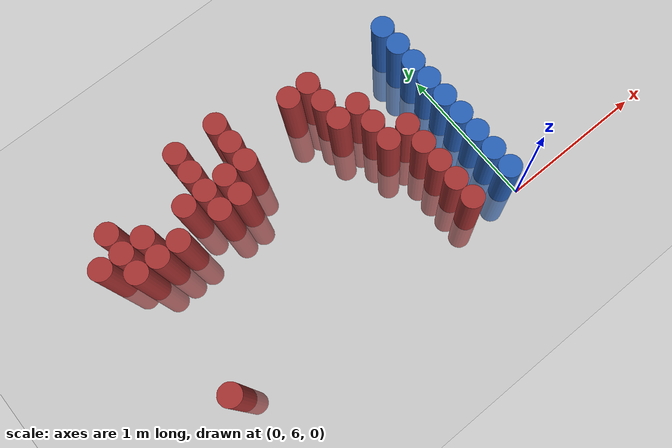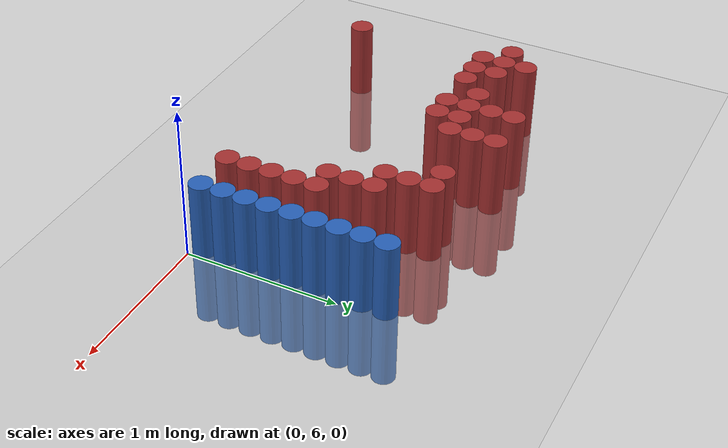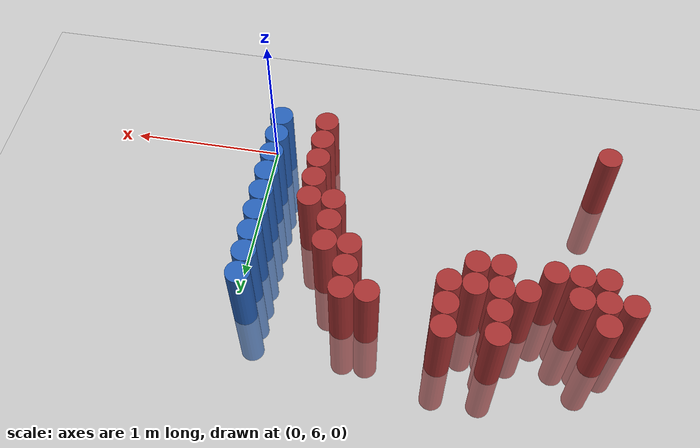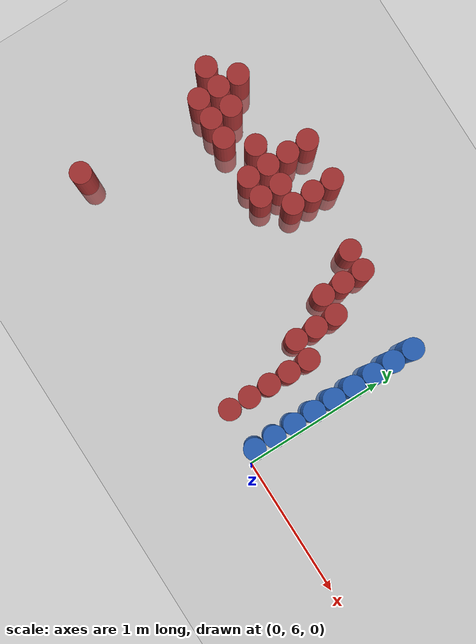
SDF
<sdf version="1.6">
 <world name="default">
  <model name="ground_plane">
   <static>1</static>
   <link name="link">
    <collision name="collision">
     <geometry><plane><normal>0 0 1</normal><size>100 100</size></plane></geometry>
     <surface><friction><ode><mu>100</mu><mu2>50</mu2></ode></friction></surface>
    </collision>
    <visual name="visual">
     <cast_shadows>0</cast_shadows>
     <geometry><plane><normal>0 0 1</normal><size>100 100</size></plane></geometry>
     <material>
      <script><uri>file://media/materials/scripts/gazebo.material</uri><name>Gazebo/Grey</name></script>
     </material>
    </visual>
   </link>
  </model>
  <model name="unit_cylinder_200">
   <static>1</static>
   <pose>-2.325000 7.125000 0.000000 0.000000 0.000000 0.000000</pose>
   <link name="link">
    <inertial>
     <mass>1</mass>
     <inertia><ixx>0.145833</ixx><ixy>0</ixy><ixz>0</ixz><iyy>0.145833</iyy><iyz>0</iyz><izz>0.125</izz></inertia>
    </inertial>
    <collision name="collision">
     <geometry><cylinder><radius>0.075000</radius><length>1</length></cylinder></geometry>
    </collision>
    <visual name="visual">
     <geometry><cylinder><radius>0.075000</radius><length>1</length></cylinder></geometry>
     <material>
      <ambient>0.648000 0.192000 0.192000 1</ambient>
      <diffuse>0.648000 0.192000 0.192000 1</diffuse>
     </material>
     <material>
      <script><name>Gazebo/Grey</name><uri>file://media/materials/scripts/gazebo.material</uri></script>
     </material>
    </visual>
    <sensor name="sensor_contact" type="contact"><contact><collision>collision</collision></contact></sensor>
   </link>
   <plugin filename="gz-sim-touchplugin-system" name="gz::sim::systems::TouchPlugin">
    <target>robot</target>
    <namespace>robot</namespace>
    <time>0.001</time>
    <enabled>true</enabled>
   </plugin>
  </model>
  <model name="unit_cylinder_204">
   <static>1</static>
   <pose>-2.175000 6.075000 0.000000 0.000000 0.000000 0.000000</pose>
   <link name="link">
    <inertial>
     <mass>1</mass>
     <inertia><ixx>0.145833</ixx><ixy>0</ixy><ixz>0</ixz><iyy>0.145833</iyy><iyz>0</iyz><izz>0.125</izz></inertia>
    </inertial>
    <collision name="collision">
     <geometry><cylinder><radius>0.075000</radius><length>1</length></cylinder></geometry>
    </collision>
    <visual name="visual">
     <geometry><cylinder><radius>0.075000</radius><length>1</length></cylinder></geometry>
     <material>
      <ambient>0.648000 0.192000 0.192000 1</ambient>
      <diffuse>0.648000 0.192000 0.192000 1</diffuse>
     </material>
     <material>
      <script><name>Gazebo/Grey</name><uri>file://media/materials/scripts/gazebo.material</uri></script>
     </material>
    </visual>
    <sensor name="sensor_contact" type="contact"><contact><collision>collision</collision></contact></sensor>
   </link>
   <plugin filename="gz-sim-touchplugin-system" name="gz::sim::systems::TouchPlugin">
    <target>robot</target>
    <namespace>robot</namespace>
    <time>0.001</time>
    <enabled>true</enabled>
   </plugin>
  </model>
  <model name="unit_cylinder_205">
   <static>1</static>
   <pose>-2.175000 6.975000 0.000000 0.000000 0.000000 0.000000</pose>
   <link name="link">
    <inertial>
     <mass>1</mass>
     <inertia><ixx>0.145833</ixx><ixy>0</ixy><ixz>0</ixz><iyy>0.145833</iyy><iyz>0</iyz><izz>0.125</izz></inertia>
    </inertial>
    <collision name="collision">
     <geometry><cylinder><radius>0.075000</radius><length>1</length></cylinder></geometry>
    </collision>
    <visual name="visual">
     <geometry><cylinder><radius>0.075000</radius><length>1</length></cylinder></geometry>
     <material>
      <ambient>0.648000 0.192000 0.192000 1</ambient>
      <diffuse>0.648000 0.192000 0.192000 1</diffuse>
     </material>
     <material>
      <script><name>Gazebo/Grey</name><uri>file://media/materials/scripts/gazebo.material</uri></script>
     </material>
    </visual>
    <sensor name="sensor_contact" type="contact"><contact><collision>collision</collision></contact></sensor>
   </link>
   <plugin filename="gz-sim-touchplugin-system" name="gz::sim::systems::TouchPlugin">
    <target>robot</target>
    <namespace>robot</namespace>
    <time>0.001</time>
    <enabled>true</enabled>
   </plugin>
  </model>
  <model name="unit_cylinder_206">
   <static>1</static>
   <pose>-2.175000 7.125000 0.000000 0.000000 0.000000 0.000000</pose>
   <link name="link">
    <inertial>
     <mass>1</mass>
     <inertia><ixx>0.145833</ixx><ixy>0</ixy><ixz>0</ixz><iyy>0.145833</iyy><iyz>0</iyz><izz>0.125</izz></inertia>
    </inertial>
    <collision name="collision">
     <geometry><cylinder><radius>0.075000</radius><length>1</length></cylinder></geometry>
    </collision>
    <visual name="visual">
     <geometry><cylinder><radius>0.075000</radius><length>1</length></cylinder></geometry>
     <material>
      <ambient>0.648000 0.192000 0.192000 1</ambient>
      <diffuse>0.648000 0.192000 0.192000 1</diffuse>
     </material>
     <material>
      <script><name>Gazebo/Grey</name><uri>file://media/materials/scripts/gazebo.material</uri></script>
     </material>
    </visual>
    <sensor name="sensor_contact" type="contact"><contact><collision>collision</collision></contact></sensor>
   </link>
   <plugin filename="gz-sim-touchplugin-system" name="gz::sim::systems::TouchPlugin">
    <target>robot</target>
    <namespace>robot</namespace>
    <time>0.001</time>
    <enabled>true</enabled>
   </plugin>
  </model>
  <model name="unit_cylinder_207">
   <static>1</static>
   <pose>-2.175000 7.275000 0.000000 0.000000 0.000000 0.000000</pose>
   <link name="link">
    <inertial>
     <mass>1</mass>
     <inertia><ixx>0.145833</ixx><ixy>0</ixy><ixz>0</ixz><iyy>0.145833</iyy><iyz>0</iyz><izz>0.125</izz></inertia>
    </inertial>
    <collision name="collision">
     <geometry><cylinder><radius>0.075000</radius><length>1</length></cylinder></geometry>
    </collision>
    <visual name="visual">
     <geometry><cylinder><radius>0.075000</radius><length>1</length></cylinder></geometry>
     <material>
      <ambient>0.648000 0.192000 0.192000 1</ambient>
      <diffuse>0.648000 0.192000 0.192000 1</diffuse>
     </material>
     <material>
      <script><name>Gazebo/Grey</name><uri>file://media/materials/scripts/gazebo.material</uri></script>
     </material>
    </visual>
    <sensor name="sensor_contact" type="contact"><contact><collision>collision</collision></contact></sensor>
   </link>
   <plugin filename="gz-sim-touchplugin-system" name="gz::sim::systems::TouchPlugin">
    <target>robot</target>
    <namespace>robot</namespace>
    <time>0.001</time>
    <enabled>true</enabled>
   </plugin>
  </model>
  <model name="unit_cylinder_210">
   <static>1</static>
   <pose>-2.025000 6.975000 0.000000 0.000000 0.000000 0.000000</pose>
   <link name="link">
    <inertial>
     <mass>1</mass>
     <inertia><ixx>0.145833</ixx><ixy>0</ixy><ixz>0</ixz><iyy>0.145833</iyy><iyz>0</iyz><izz>0.125</izz></inertia>
    </inertial>
    <collision name="collision">
     <geometry><cylinder><radius>0.075000</radius><length>1</length></cylinder></geometry>
    </collision>
    <visual name="visual">
     <geometry><cylinder><radius>0.075000</radius><length>1</length></cylinder></geometry>
     <material>
      <ambient>0.648000 0.192000 0.192000 1</ambient>
      <diffuse>0.648000 0.192000 0.192000 1</diffuse>
     </material>
     <material>
      <script><name>Gazebo/Grey</name><uri>file://media/materials/scripts/gazebo.material</uri></script>
     </material>
    </visual>
    <sensor name="sensor_contact" type="contact"><contact><collision>collision</collision></contact></sensor>
   </link>
   <plugin filename="gz-sim-touchplugin-system" name="gz::sim::systems::TouchPlugin">
    <target>robot</target>
    <namespace>robot</namespace>
    <time>0.001</time>
    <enabled>true</enabled>
   </plugin>
  </model>
  <model name="unit_cylinder_211">
   <static>1</static>
   <pose>-2.025000 7.125000 0.000000 0.000000 0.000000 0.000000</pose>
   <link name="link">
    <inertial>
     <mass>1</mass>
     <inertia><ixx>0.145833</ixx><ixy>0</ixy><ixz>0</ixz><iyy>0.145833</iyy><iyz>0</iyz><izz>0.125</izz></inertia>
    </inertial>
    <collision name="collision">
     <geometry><cylinder><radius>0.075000</radius><length>1</length></cylinder></geometry>
    </collision>
    <visual name="visual">
     <geometry><cylinder><radius>0.075000</radius><length>1</length></cylinder></geometry>
     <material>
      <ambient>0.648000 0.192000 0.192000 1</ambient>
      <diffuse>0.648000 0.192000 0.192000 1</diffuse>
     </material>
     <material>
      <script><name>Gazebo/Grey</name><uri>file://media/materials/scripts/gazebo.material</uri></script>
     </material>
    </visual>
    <sensor name="sensor_contact" type="contact"><contact><collision>collision</collision></contact></sensor>
   </link>
   <plugin filename="gz-sim-touchplugin-system" name="gz::sim::systems::TouchPlugin">
    <target>robot</target>
    <namespace>robot</namespace>
    <time>0.001</time>
    <enabled>true</enabled>
   </plugin>
  </model>
  <model name="unit_cylinder_216">
   <static>1</static>
   <pose>-1.875000 6.975000 0.000000 0.000000 0.000000 0.000000</pose>
   <link name="link">
    <inertial>
     <mass>1</mass>
     <inertia><ixx>0.145833</ixx><ixy>0</ixy><ixz>0</ixz><iyy>0.145833</iyy><iyz>0</iyz><izz>0.125</izz></inertia>
    </inertial>
    <collision name="collision">
     <geometry><cylinder><radius>0.075000</radius><length>1</length></cylinder></geometry>
    </collision>
    <visual name="visual">
     <geometry><cylinder><radius>0.075000</radius><length>1</length></cylinder></geometry>
     <material>
      <ambient>0.648000 0.192000 0.192000 1</ambient>
      <diffuse>0.648000 0.192000 0.192000 1</diffuse>
     </material>
     <material>
      <script><name>Gazebo/Grey</name><uri>file://media/materials/scripts/gazebo.material</uri></script>
     </material>
    </visual>
    <sensor name="sensor_contact" type="contact"><contact><collision>collision</collision></contact></sensor>
   </link>
   <plugin filename="gz-sim-touchplugin-system" name="gz::sim::systems::TouchPlugin">
    <target>robot</target>
    <namespace>robot</namespace>
    <time>0.001</time>
    <enabled>true</enabled>
   </plugin>
  </model>
  <model name="unit_cylinder_221">
   <static>1</static>
   <pose>-1.725000 7.125000 0.000000 0.000000 0.000000 0.000000</pose>
   <link name="link">
    <inertial>
     <mass>1</mass>
     <inertia><ixx>0.145833</ixx><ixy>0</ixy><ixz>0</ixz><iyy>0.145833</iyy><iyz>0</iyz><izz>0.125</izz></inertia>
    </inertial>
    <collision name="collision">
     <geometry><cylinder><radius>0.075000</radius><length>1</length></cylinder></geometry>
    </collision>
    <visual name="visual">
     <geometry><cylinder><radius>0.075000</radius><length>1</length></cylinder></geometry>
     <material>
      <ambient>0.648000 0.192000 0.192000 1</ambient>
      <diffuse>0.648000 0.192000 0.192000 1</diffuse>
     </material>
     <material>
      <script><name>Gazebo/Grey</name><uri>file://media/materials/scripts/gazebo.material</uri></script>
     </material>
    </visual>
    <sensor name="sensor_contact" type="contact"><contact><collision>collision</collision></contact></sensor>
   </link>
   <plugin filename="gz-sim-touchplugin-system" name="gz::sim::systems::TouchPlugin">
    <target>robot</target>
    <namespace>robot</namespace>
    <time>0.001</time>
    <enabled>true</enabled>
   </plugin>
  </model>
  <model name="unit_cylinder_227">
   <static>1</static>
   <pose>-1.575000 6.975000 0.000000 0.000000 0.000000 0.000000</pose>
   <link name="link">
    <inertial>
     <mass>1</mass>
     <inertia><ixx>0.145833</ixx><ixy>0</ixy><ixz>0</ixz><iyy>0.145833</iyy><iyz>0</iyz><izz>0.125</izz></inertia>
    </inertial>
    <collision name="collision">
     <geometry><cylinder><radius>0.075000</radius><length>1</length></cylinder></geometry>
    </collision>
    <visual name="visual">
     <geometry><cylinder><radius>0.075000</radius><length>1</length></cylinder></geometry>
     <material>
      <ambient>0.648000 0.192000 0.192000 1</ambient>
      <diffuse>0.648000 0.192000 0.192000 1</diffuse>
     </material>
     <material>
      <script><name>Gazebo/Grey</name><uri>file://media/materials/scripts/gazebo.material</uri></script>
     </material>
    </visual>
    <sensor name="sensor_contact" type="contact"><contact><collision>collision</collision></contact></sensor>
   </link>
   <plugin filename="gz-sim-touchplugin-system" name="gz::sim::systems::TouchPlugin">
    <target>robot</target>
    <namespace>robot</namespace>
    <time>0.001</time>
    <enabled>true</enabled>
   </plugin>
  </model>
  <model name="unit_cylinder_228">
   <static>1</static>
   <pose>-1.575000 7.125000 0.000000 0.000000 0.000000 0.000000</pose>
   <link name="link">
    <inertial>
     <mass>1</mass>
     <inertia><ixx>0.145833</ixx><ixy>0</ixy><ixz>0</ixz><iyy>0.145833</iyy><iyz>0</iyz><izz>0.125</izz></inertia>
    </inertial>
    <collision name="collision">
     <geometry><cylinder><radius>0.075000</radius><length>1</length></cylinder></geometry>
    </collision>
    <visual name="visual">
     <geometry><cylinder><radius>0.075000</radius><length>1</length></cylinder></geometry>
     <material>
      <ambient>0.648000 0.192000 0.192000 1</ambient>
      <diffuse>0.648000 0.192000 0.192000 1</diffuse>
     </material>
     <material>
      <script><name>Gazebo/Grey</name><uri>file://media/materials/scripts/gazebo.material</uri></script>
     </material>
    </visual>
    <sensor name="sensor_contact" type="contact"><contact><collision>collision</collision></contact></sensor>
   </link>
   <plugin filename="gz-sim-touchplugin-system" name="gz::sim::systems::TouchPlugin">
    <target>robot</target>
    <namespace>robot</namespace>
    <time>0.001</time>
    <enabled>true</enabled>
   </plugin>
  </model>
  <model name="unit_cylinder_229">
   <static>1</static>
   <pose>-1.575000 7.275000 0.000000 0.000000 0.000000 0.000000</pose>
   <link name="link">
    <inertial>
     <mass>1</mass>
     <inertia><ixx>0.145833</ixx><ixy>0</ixy><ixz>0</ixz><iyy>0.145833</iyy><iyz>0</iyz><izz>0.125</izz></inertia>
    </inertial>
    <collision name="collision">
     <geometry><cylinder><radius>0.075000</radius><length>1</length></cylinder></geometry>
    </collision>
    <visual name="visual">
     <geometry><cylinder><radius>0.075000</radius><length>1</length></cylinder></geometry>
     <material>
      <ambient>0.648000 0.192000 0.192000 1</ambient>
      <diffuse>0.648000 0.192000 0.192000 1</diffuse>
     </material>
     <material>
      <script><name>Gazebo/Grey</name><uri>file://media/materials/scripts/gazebo.material</uri></script>
     </material>
    </visual>
    <sensor name="sensor_contact" type="contact"><contact><collision>collision</collision></contact></sensor>
   </link>
   <plugin filename="gz-sim-touchplugin-system" name="gz::sim::systems::TouchPlugin">
    <target>robot</target>
    <namespace>robot</namespace>
    <time>0.001</time>
    <enabled>true</enabled>
   </plugin>
  </model>
  <model name="unit_cylinder_230">
   <static>1</static>
   <pose>-1.575000 7.425000 0.000000 0.000000 0.000000 0.000000</pose>
   <link name="link">
    <inertial>
     <mass>1</mass>
     <inertia><ixx>0.145833</ixx><ixy>0</ixy><ixz>0</ixz><iyy>0.145833</iyy><iyz>0</iyz><izz>0.125</izz></inertia>
    </inertial>
    <collision name="collision">
     <geometry><cylinder><radius>0.075000</radius><length>1</length></cylinder></geometry>
    </collision>
    <visual name="visual">
     <geometry><cylinder><radius>0.075000</radius><length>1</length></cylinder></geometry>
     <material>
      <ambient>0.648000 0.192000 0.192000 1</ambient>
      <diffuse>0.648000 0.192000 0.192000 1</diffuse>
     </material>
     <material>
      <script><name>Gazebo/Grey</name><uri>file://media/materials/scripts/gazebo.material</uri></script>
     </material>
    </visual>
    <sensor name="sensor_contact" type="contact"><contact><collision>collision</collision></contact></sensor>
   </link>
   <plugin filename="gz-sim-touchplugin-system" name="gz::sim::systems::TouchPlugin">
    <target>robot</target>
    <namespace>robot</namespace>
    <time>0.001</time>
    <enabled>true</enabled>
   </plugin>
  </model>
  <model name="unit_cylinder_237">
   <static>1</static>
   <pose>-1.425000 6.975000 0.000000 0.000000 0.000000 0.000000</pose>
   <link name="link">
    <inertial>
     <mass>1</mass>
     <inertia><ixx>0.145833</ixx><ixy>0</ixy><ixz>0</ixz><iyy>0.145833</iyy><iyz>0</iyz><izz>0.125</izz></inertia>
    </inertial>
    <collision name="collision">
     <geometry><cylinder><radius>0.075000</radius><length>1</length></cylinder></geometry>
    </collision>
    <visual name="visual">
     <geometry><cylinder><radius>0.075000</radius><length>1</length></cylinder></geometry>
     <material>
      <ambient>0.648000 0.192000 0.192000 1</ambient>
      <diffuse>0.648000 0.192000 0.192000 1</diffuse>
     </material>
     <material>
      <script><name>Gazebo/Grey</name><uri>file://media/materials/scripts/gazebo.material</uri></script>
     </material>
    </visual>
    <sensor name="sensor_contact" type="contact"><contact><collision>collision</collision></contact></sensor>
   </link>
   <plugin filename="gz-sim-touchplugin-system" name="gz::sim::systems::TouchPlugin">
    <target>robot</target>
    <namespace>robot</namespace>
    <time>0.001</time>
    <enabled>true</enabled>
   </plugin>
  </model>
  <model name="unit_cylinder_238">
   <static>1</static>
   <pose>-1.425000 7.125000 0.000000 0.000000 0.000000 0.000000</pose>
   <link name="link">
    <inertial>
     <mass>1</mass>
     <inertia><ixx>0.145833</ixx><ixy>0</ixy><ixz>0</ixz><iyy>0.145833</iyy><iyz>0</iyz><izz>0.125</izz></inertia>
    </inertial>
    <collision name="collision">
     <geometry><cylinder><radius>0.075000</radius><length>1</length></cylinder></geometry>
    </collision>
    <visual name="visual">
     <geometry><cylinder><radius>0.075000</radius><length>1</length></cylinder></geometry>
     <material>
      <ambient>0.648000 0.192000 0.192000 1</ambient>
      <diffuse>0.648000 0.192000 0.192000 1</diffuse>
     </material>
     <material>
      <script><name>Gazebo/Grey</name><uri>file://media/materials/scripts/gazebo.material</uri></script>
     </material>
    </visual>
    <sensor name="sensor_contact" type="contact"><contact><collision>collision</collision></contact></sensor>
   </link>
   <plugin filename="gz-sim-touchplugin-system" name="gz::sim::systems::TouchPlugin">
    <target>robot</target>
    <namespace>robot</namespace>
    <time>0.001</time>
    <enabled>true</enabled>
   </plugin>
  </model>
  <model name="unit_cylinder_246">
   <static>1</static>
   <pose>-1.275000 7.125000 0.000000 0.000000 0.000000 0.000000</pose>
   <link name="link">
    <inertial>
     <mass>1</mass>
     <inertia><ixx>0.145833</ixx><ixy>0</ixy><ixz>0</ixz><iyy>0.145833</iyy><iyz>0</iyz><izz>0.125</izz></inertia>
    </inertial>
    <collision name="collision">
     <geometry><cylinder><radius>0.075000</radius><length>1</length></cylinder></geometry>
    </collision>
    <visual name="visual">
     <geometry><cylinder><radius>0.075000</radius><length>1</length></cylinder></geometry>
     <material>
      <ambient>0.648000 0.192000 0.192000 1</ambient>
      <diffuse>0.648000 0.192000 0.192000 1</diffuse>
     </material>
     <material>
      <script><name>Gazebo/Grey</name><uri>file://media/materials/scripts/gazebo.material</uri></script>
     </material>
    </visual>
    <sensor name="sensor_contact" type="contact"><contact><collision>collision</collision></contact></sensor>
   </link>
   <plugin filename="gz-sim-touchplugin-system" name="gz::sim::systems::TouchPlugin">
    <target>robot</target>
    <namespace>robot</namespace>
    <time>0.001</time>
    <enabled>true</enabled>
   </plugin>
  </model>
  <model name="unit_cylinder_247">
   <static>1</static>
   <pose>-1.275000 7.275000 0.000000 0.000000 0.000000 0.000000</pose>
   <link name="link">
    <inertial>
     <mass>1</mass>
     <inertia><ixx>0.145833</ixx><ixy>0</ixy><ixz>0</ixz><iyy>0.145833</iyy><iyz>0</iyz><izz>0.125</izz></inertia>
    </inertial>
    <collision name="collision">
     <geometry><cylinder><radius>0.075000</radius><length>1</length></cylinder></geometry>
    </collision>
    <visual name="visual">
     <geometry><cylinder><radius>0.075000</radius><length>1</length></cylinder></geometry>
     <material>
      <ambient>0.648000 0.192000 0.192000 1</ambient>
      <diffuse>0.648000 0.192000 0.192000 1</diffuse>
     </material>
     <material>
      <script><name>Gazebo/Grey</name><uri>file://media/materials/scripts/gazebo.material</uri></script>
     </material>
    </visual>
    <sensor name="sensor_contact" type="contact"><contact><collision>collision</collision></contact></sensor>
   </link>
   <plugin filename="gz-sim-touchplugin-system" name="gz::sim::systems::TouchPlugin">
    <target>robot</target>
    <namespace>robot</namespace>
    <time>0.001</time>
    <enabled>true</enabled>
   </plugin>
  </model>
  <model name="unit_cylinder_248">
   <static>1</static>
   <pose>-1.275000 7.425000 0.000000 0.000000 0.000000 0.000000</pose>
   <link name="link">
    <inertial>
     <mass>1</mass>
     <inertia><ixx>0.145833</ixx><ixy>0</ixy><ixz>0</ixz><iyy>0.145833</iyy><iyz>0</iyz><izz>0.125</izz></inertia>
    </inertial>
    <collision name="collision">
     <geometry><cylinder><radius>0.075000</radius><length>1</length></cylinder></geometry>
    </collision>
    <visual name="visual">
     <geometry><cylinder><radius>0.075000</radius><length>1</length></cylinder></geometry>
     <material>
      <ambient>0.648000 0.192000 0.192000 1</ambient>
      <diffuse>0.648000 0.192000 0.192000 1</diffuse>
     </material>
     <material>
      <script><name>Gazebo/Grey</name><uri>file://media/materials/scripts/gazebo.material</uri></script>
     </material>
    </visual>
    <sensor name="sensor_contact" type="contact"><contact><collision>collision</collision></contact></sensor>
   </link>
   <plugin filename="gz-sim-touchplugin-system" name="gz::sim::systems::TouchPlugin">
    <target>robot</target>
    <namespace>robot</namespace>
    <time>0.001</time>
    <enabled>true</enabled>
   </plugin>
  </model>
  <model name="unit_cylinder_267">
   <static>1</static>
   <pose>-0.825000 7.275000 0.000000 0.000000 0.000000 0.000000</pose>
   <link name="link">
    <inertial>
     <mass>1</mass>
     <inertia><ixx>0.145833</ixx><ixy>0</ixy><ixz>0</ixz><iyy>0.145833</iyy><iyz>0</iyz><izz>0.125</izz></inertia>
    </inertial>
    <collision name="collision">
     <geometry><cylinder><radius>0.075000</radius><length>1</length></cylinder></geometry>
    </collision>
    <visual name="visual">
     <geometry><cylinder><radius>0.075000</radius><length>1</length></cylinder></geometry>
     <material>
      <ambient>0.648000 0.192000 0.192000 1</ambient>
      <diffuse>0.648000 0.192000 0.192000 1</diffuse>
     </material>
     <material>
      <script><name>Gazebo/Grey</name><uri>file://media/materials/scripts/gazebo.material</uri></script>
     </material>
    </visual>
    <sensor name="sensor_contact" type="contact"><contact><collision>collision</collision></contact></sensor>
   </link>
   <plugin filename="gz-sim-touchplugin-system" name="gz::sim::systems::TouchPlugin">
    <target>robot</target>
    <namespace>robot</namespace>
    <time>0.001</time>
    <enabled>true</enabled>
   </plugin>
  </model>
  <model name="unit_cylinder_279">
   <static>1</static>
   <pose>-0.675000 6.975000 0.000000 0.000000 0.000000 0.000000</pose>
   <link name="link">
    <inertial>
     <mass>1</mass>
     <inertia><ixx>0.145833</ixx><ixy>0</ixy><ixz>0</ixz><iyy>0.145833</iyy><iyz>0</iyz><izz>0.125</izz></inertia>
    </inertial>
    <collision name="collision">
     <geometry><cylinder><radius>0.075000</radius><length>1</length></cylinder></geometry>
    </collision>
    <visual name="visual">
     <geometry><cylinder><radius>0.075000</radius><length>1</length></cylinder></geometry>
     <material>
      <ambient>0.648000 0.192000 0.192000 1</ambient>
      <diffuse>0.648000 0.192000 0.192000 1</diffuse>
     </material>
     <material>
      <script><name>Gazebo/Grey</name><uri>file://media/materials/scripts/gazebo.material</uri></script>
     </material>
    </visual>
    <sensor name="sensor_contact" type="contact"><contact><collision>collision</collision></contact></sensor>
   </link>
   <plugin filename="gz-sim-touchplugin-system" name="gz::sim::systems::TouchPlugin">
    <target>robot</target>
    <namespace>robot</namespace>
    <time>0.001</time>
    <enabled>true</enabled>
   </plugin>
  </model>
  <model name="unit_cylinder_280">
   <static>1</static>
   <pose>-0.675000 7.125000 0.000000 0.000000 0.000000 0.000000</pose>
   <link name="link">
    <inertial>
     <mass>1</mass>
     <inertia><ixx>0.145833</ixx><ixy>0</ixy><ixz>0</ixz><iyy>0.145833</iyy><iyz>0</iyz><izz>0.125</izz></inertia>
    </inertial>
    <collision name="collision">
     <geometry><cylinder><radius>0.075000</radius><length>1</length></cylinder></geometry>
    </collision>
    <visual name="visual">
     <geometry><cylinder><radius>0.075000</radius><length>1</length></cylinder></geometry>
     <material>
      <ambient>0.648000 0.192000 0.192000 1</ambient>
      <diffuse>0.648000 0.192000 0.192000 1</diffuse>
     </material>
     <material>
      <script><name>Gazebo/Grey</name><uri>file://media/materials/scripts/gazebo.material</uri></script>
     </material>
    </visual>
    <sensor name="sensor_contact" type="contact"><contact><collision>collision</collision></contact></sensor>
   </link>
   <plugin filename="gz-sim-touchplugin-system" name="gz::sim::systems::TouchPlugin">
    <target>robot</target>
    <namespace>robot</namespace>
    <time>0.001</time>
    <enabled>true</enabled>
   </plugin>
  </model>
  <model name="unit_cylinder_281">
   <static>1</static>
   <pose>-0.675000 7.275000 0.000000 0.000000 0.000000 0.000000</pose>
   <link name="link">
    <inertial>
     <mass>1</mass>
     <inertia><ixx>0.145833</ixx><ixy>0</ixy><ixz>0</ixz><iyy>0.145833</iyy><iyz>0</iyz><izz>0.125</izz></inertia>
    </inertial>
    <collision name="collision">
     <geometry><cylinder><radius>0.075000</radius><length>1</length></cylinder></geometry>
    </collision>
    <visual name="visual">
     <geometry><cylinder><radius>0.075000</radius><length>1</length></cylinder></geometry>
     <material>
      <ambient>0.648000 0.192000 0.192000 1</ambient>
      <diffuse>0.648000 0.192000 0.192000 1</diffuse>
     </material>
     <material>
      <script><name>Gazebo/Grey</name><uri>file://media/materials/scripts/gazebo.material</uri></script>
     </material>
    </visual>
    <sensor name="sensor_contact" type="contact"><contact><collision>collision</collision></contact></sensor>
   </link>
   <plugin filename="gz-sim-touchplugin-system" name="gz::sim::systems::TouchPlugin">
    <target>robot</target>
    <namespace>robot</namespace>
    <time>0.001</time>
    <enabled>true</enabled>
   </plugin>
  </model>
  <model name="unit_cylinder_290">
   <static>1</static>
   <pose>-0.525000 6.675000 0.000000 0.000000 0.000000 0.000000</pose>
   <link name="link">
    <inertial>
     <mass>1</mass>
     <inertia><ixx>0.145833</ixx><ixy>0</ixy><ixz>0</ixz><iyy>0.145833</iyy><iyz>0</iyz><izz>0.125</izz></inertia>
    </inertial>
    <collision name="collision">
     <geometry><cylinder><radius>0.075000</radius><length>1</length></cylinder></geometry>
    </collision>
    <visual name="visual">
     <geometry><cylinder><radius>0.075000</radius><length>1</length></cylinder></geometry>
     <material>
      <ambient>0.648000 0.192000 0.192000 1</ambient>
      <diffuse>0.648000 0.192000 0.192000 1</diffuse>
     </material>
     <material>
      <script><name>Gazebo/Grey</name><uri>file://media/materials/scripts/gazebo.material</uri></script>
     </material>
    </visual>
    <sensor name="sensor_contact" type="contact"><contact><collision>collision</collision></contact></sensor>
   </link>
   <plugin filename="gz-sim-touchplugin-system" name="gz::sim::systems::TouchPlugin">
    <target>robot</target>
    <namespace>robot</namespace>
    <time>0.001</time>
    <enabled>true</enabled>
   </plugin>
  </model>
  <model name="unit_cylinder_291">
   <static>1</static>
   <pose>-0.525000 6.825000 0.000000 0.000000 0.000000 0.000000</pose>
   <link name="link">
    <inertial>
     <mass>1</mass>
     <inertia><ixx>0.145833</ixx><ixy>0</ixy><ixz>0</ixz><iyy>0.145833</iyy><iyz>0</iyz><izz>0.125</izz></inertia>
    </inertial>
    <collision name="collision">
     <geometry><cylinder><radius>0.075000</radius><length>1</length></cylinder></geometry>
    </collision>
    <visual name="visual">
     <geometry><cylinder><radius>0.075000</radius><length>1</length></cylinder></geometry>
     <material>
      <ambient>0.648000 0.192000 0.192000 1</ambient>
      <diffuse>0.648000 0.192000 0.192000 1</diffuse>
     </material>
     <material>
      <script><name>Gazebo/Grey</name><uri>file://media/materials/scripts/gazebo.material</uri></script>
     </material>
    </visual>
    <sensor name="sensor_contact" type="contact"><contact><collision>collision</collision></contact></sensor>
   </link>
   <plugin filename="gz-sim-touchplugin-system" name="gz::sim::systems::TouchPlugin">
    <target>robot</target>
    <namespace>robot</namespace>
    <time>0.001</time>
    <enabled>true</enabled>
   </plugin>
  </model>
  <model name="unit_cylinder_292">
   <static>1</static>
   <pose>-0.525000 6.975000 0.000000 0.000000 0.000000 0.000000</pose>
   <link name="link">
    <inertial>
     <mass>1</mass>
     <inertia><ixx>0.145833</ixx><ixy>0</ixy><ixz>0</ixz><iyy>0.145833</iyy><iyz>0</iyz><izz>0.125</izz></inertia>
    </inertial>
    <collision name="collision">
     <geometry><cylinder><radius>0.075000</radius><length>1</length></cylinder></geometry>
    </collision>
    <visual name="visual">
     <geometry><cylinder><radius>0.075000</radius><length>1</length></cylinder></geometry>
     <material>
      <ambient>0.648000 0.192000 0.192000 1</ambient>
      <diffuse>0.648000 0.192000 0.192000 1</diffuse>
     </material>
     <material>
      <script><name>Gazebo/Grey</name><uri>file://media/materials/scripts/gazebo.material</uri></script>
     </material>
    </visual>
    <sensor name="sensor_contact" type="contact"><contact><collision>collision</collision></contact></sensor>
   </link>
   <plugin filename="gz-sim-touchplugin-system" name="gz::sim::systems::TouchPlugin">
    <target>robot</target>
    <namespace>robot</namespace>
    <time>0.001</time>
    <enabled>true</enabled>
   </plugin>
  </model>
  <model name="unit_cylinder_300">
   <static>1</static>
   <pose>-0.375000 6.075000 0.000000 0.000000 0.000000 0.000000</pose>
   <link name="link">
    <inertial>
     <mass>1</mass>
     <inertia><ixx>0.145833</ixx><ixy>0</ixy><ixz>0</ixz><iyy>0.145833</iyy><iyz>0</iyz><izz>0.125</izz></inertia>
    </inertial>
    <collision name="collision">
     <geometry><cylinder><radius>0.075000</radius><length>1</length></cylinder></geometry>
    </collision>
    <visual name="visual">
     <geometry><cylinder><radius>0.075000</radius><length>1</length></cylinder></geometry>
     <material>
      <ambient>0.648000 0.192000 0.192000 1</ambient>
      <diffuse>0.648000 0.192000 0.192000 1</diffuse>
     </material>
     <material>
      <script><name>Gazebo/Grey</name><uri>file://media/materials/scripts/gazebo.material</uri></script>
     </material>
    </visual>
    <sensor name="sensor_contact" type="contact"><contact><collision>collision</collision></contact></sensor>
   </link>
   <plugin filename="gz-sim-touchplugin-system" name="gz::sim::systems::TouchPlugin">
    <target>robot</target>
    <namespace>robot</namespace>
    <time>0.001</time>
    <enabled>true</enabled>
   </plugin>
  </model>
  <model name="unit_cylinder_301">
   <static>1</static>
   <pose>-0.375000 6.225000 0.000000 0.000000 0.000000 0.000000</pose>
   <link name="link">
    <inertial>
     <mass>1</mass>
     <inertia><ixx>0.145833</ixx><ixy>0</ixy><ixz>0</ixz><iyy>0.145833</iyy><iyz>0</iyz><izz>0.125</izz></inertia>
    </inertial>
    <collision name="collision">
     <geometry><cylinder><radius>0.075000</radius><length>1</length></cylinder></geometry>
    </collision>
    <visual name="visual">
     <geometry><cylinder><radius>0.075000</radius><length>1</length></cylinder></geometry>
     <material>
      <ambient>0.648000 0.192000 0.192000 1</ambient>
      <diffuse>0.648000 0.192000 0.192000 1</diffuse>
     </material>
     <material>
      <script><name>Gazebo/Grey</name><uri>file://media/materials/scripts/gazebo.material</uri></script>
     </material>
    </visual>
    <sensor name="sensor_contact" type="contact"><contact><collision>collision</collision></contact></sensor>
   </link>
   <plugin filename="gz-sim-touchplugin-system" name="gz::sim::systems::TouchPlugin">
    <target>robot</target>
    <namespace>robot</namespace>
    <time>0.001</time>
    <enabled>true</enabled>
   </plugin>
  </model>
  <model name="unit_cylinder_302">
   <static>1</static>
   <pose>-0.375000 6.375000 0.000000 0.000000 0.000000 0.000000</pose>
   <link name="link">
    <inertial>
     <mass>1</mass>
     <inertia><ixx>0.145833</ixx><ixy>0</ixy><ixz>0</ixz><iyy>0.145833</iyy><iyz>0</iyz><izz>0.125</izz></inertia>
    </inertial>
    <collision name="collision">
     <geometry><cylinder><radius>0.075000</radius><length>1</length></cylinder></geometry>
    </collision>
    <visual name="visual">
     <geometry><cylinder><radius>0.075000</radius><length>1</length></cylinder></geometry>
     <material>
      <ambient>0.648000 0.192000 0.192000 1</ambient>
      <diffuse>0.648000 0.192000 0.192000 1</diffuse>
     </material>
     <material>
      <script><name>Gazebo/Grey</name><uri>file://media/materials/scripts/gazebo.material</uri></script>
     </material>
    </visual>
    <sensor name="sensor_contact" type="contact"><contact><collision>collision</collision></contact></sensor>
   </link>
   <plugin filename="gz-sim-touchplugin-system" name="gz::sim::systems::TouchPlugin">
    <target>robot</target>
    <namespace>robot</namespace>
    <time>0.001</time>
    <enabled>true</enabled>
   </plugin>
  </model>
  <model name="unit_cylinder_303">
   <static>1</static>
   <pose>-0.375000 6.525000 0.000000 0.000000 0.000000 0.000000</pose>
   <link name="link">
    <inertial>
     <mass>1</mass>
     <inertia><ixx>0.145833</ixx><ixy>0</ixy><ixz>0</ixz><iyy>0.145833</iyy><iyz>0</iyz><izz>0.125</izz></inertia>
    </inertial>
    <collision name="collision">
     <geometry><cylinder><radius>0.075000</radius><length>1</length></cylinder></geometry>
    </collision>
    <visual name="visual">
     <geometry><cylinder><radius>0.075000</radius><length>1</length></cylinder></geometry>
     <material>
      <ambient>0.648000 0.192000 0.192000 1</ambient>
      <diffuse>0.648000 0.192000 0.192000 1</diffuse>
     </material>
     <material>
      <script><name>Gazebo/Grey</name><uri>file://media/materials/scripts/gazebo.material</uri></script>
     </material>
    </visual>
    <sensor name="sensor_contact" type="contact"><contact><collision>collision</collision></contact></sensor>
   </link>
   <plugin filename="gz-sim-touchplugin-system" name="gz::sim::systems::TouchPlugin">
    <target>robot</target>
    <namespace>robot</namespace>
    <time>0.001</time>
    <enabled>true</enabled>
   </plugin>
  </model>
  <model name="unit_cylinder_304">
   <static>1</static>
   <pose>-0.375000 6.675000 0.000000 0.000000 0.000000 0.000000</pose>
   <link name="link">
    <inertial>
     <mass>1</mass>
     <inertia><ixx>0.145833</ixx><ixy>0</ixy><ixz>0</ixz><iyy>0.145833</iyy><iyz>0</iyz><izz>0.125</izz></inertia>
    </inertial>
    <collision name="collision">
     <geometry><cylinder><radius>0.075000</radius><length>1</length></cylinder></geometry>
    </collision>
    <visual name="visual">
     <geometry><cylinder><radius>0.075000</radius><length>1</length></cylinder></geometry>
     <material>
      <ambient>0.648000 0.192000 0.192000 1</ambient>
      <diffuse>0.648000 0.192000 0.192000 1</diffuse>
     </material>
     <material>
      <script><name>Gazebo/Grey</name><uri>file://media/materials/scripts/gazebo.material</uri></script>
     </material>
    </visual>
    <sensor name="sensor_contact" type="contact"><contact><collision>collision</collision></contact></sensor>
   </link>
   <plugin filename="gz-sim-touchplugin-system" name="gz::sim::systems::TouchPlugin">
    <target>robot</target>
    <namespace>robot</namespace>
    <time>0.001</time>
    <enabled>true</enabled>
   </plugin>
  </model>
  <model name="unit_cylinder_323">
   <static>1</static>
   <pose>-0.075000 6.075000 0.000000 0.000000 0.000000 0.000000</pose>
   <link name="link">
    <inertial>
     <mass>1</mass>
     <inertia><ixx>0.145833</ixx><ixy>0</ixy><ixz>0</ixz><iyy>0.145833</iyy><iyz>0</iyz><izz>0.125</izz></inertia>
    </inertial>
    <collision name="collision">
     <geometry><cylinder><radius>0.075000</radius><length>1</length></cylinder></geometry>
    </collision>
    <visual name="visual">
     <geometry><cylinder><radius>0.075000</radius><length>1</length></cylinder></geometry>
     <material>
      <ambient>0.152000 0.379000 0.720000 1</ambient>
      <diffuse>0.152000 0.379000 0.720000 1</diffuse>
     </material>
     <material>
      <script><name>Gazebo/Grey</name><uri>file://media/materials/scripts/gazebo.material</uri></script>
     </material>
    </visual>
    <sensor name="sensor_contact" type="contact"><contact><collision>collision</collision></contact></sensor>
   </link>
   <plugin filename="gz-sim-touchplugin-system" name="gz::sim::systems::TouchPlugin">
    <target>robot</target>
    <namespace>robot</namespace>
    <time>0.001</time>
    <enabled>true</enabled>
   </plugin>
  </model>
  <model name="unit_cylinder_324">
   <static>1</static>
   <pose>-0.075000 6.225000 0.000000 0.000000 0.000000 0.000000</pose>
   <link name="link">
    <inertial>
     <mass>1</mass>
     <inertia><ixx>0.145833</ixx><ixy>0</ixy><ixz>0</ixz><iyy>0.145833</iyy><iyz>0</iyz><izz>0.125</izz></inertia>
    </inertial>
    <collision name="collision">
     <geometry><cylinder><radius>0.075000</radius><length>1</length></cylinder></geometry>
    </collision>
    <visual name="visual">
     <geometry><cylinder><radius>0.075000</radius><length>1</length></cylinder></geometry>
     <material>
      <ambient>0.152000 0.379000 0.720000 1</ambient>
      <diffuse>0.152000 0.379000 0.720000 1</diffuse>
     </material>
     <material>
      <script><name>Gazebo/Grey</name><uri>file://media/materials/scripts/gazebo.material</uri></script>
     </material>
    </visual>
    <sensor name="sensor_contact" type="contact"><contact><collision>collision</collision></contact></sensor>
   </link>
   <plugin filename="gz-sim-touchplugin-system" name="gz::sim::systems::TouchPlugin">
    <target>robot</target>
    <namespace>robot</namespace>
    <time>0.001</time>
    <enabled>true</enabled>
   </plugin>
  </model>
  <model name="unit_cylinder_325">
   <static>1</static>
   <pose>-0.075000 6.375000 0.000000 0.000000 0.000000 0.000000</pose>
   <link name="link">
    <inertial>
     <mass>1</mass>
     <inertia><ixx>0.145833</ixx><ixy>0</ixy><ixz>0</ixz><iyy>0.145833</iyy><iyz>0</iyz><izz>0.125</izz></inertia>
    </inertial>
    <collision name="collision">
     <geometry><cylinder><radius>0.075000</radius><length>1</length></cylinder></geometry>
    </collision>
    <visual name="visual">
     <geometry><cylinder><radius>0.075000</radius><length>1</length></cylinder></geometry>
     <material>
      <ambient>0.152000 0.379000 0.720000 1</ambient>
      <diffuse>0.152000 0.379000 0.720000 1</diffuse>
     </material>
     <material>
      <script><name>Gazebo/Grey</name><uri>file://media/materials/scripts/gazebo.material</uri></script>
     </material>
    </visual>
    <sensor name="sensor_contact" type="contact"><contact><collision>collision</collision></contact></sensor>
   </link>
   <plugin filename="gz-sim-touchplugin-system" name="gz::sim::systems::TouchPlugin">
    <target>robot</target>
    <namespace>robot</namespace>
    <time>0.001</time>
    <enabled>true</enabled>
   </plugin>
  </model>
  <model name="unit_cylinder_326">
   <static>1</static>
   <pose>-0.075000 6.525000 0.000000 0.000000 0.000000 0.000000</pose>
   <link name="link">
    <inertial>
     <mass>1</mass>
     <inertia><ixx>0.145833</ixx><ixy>0</ixy><ixz>0</ixz><iyy>0.145833</iyy><iyz>0</iyz><izz>0.125</izz></inertia>
    </inertial>
    <collision name="collision">
     <geometry><cylinder><radius>0.075000</radius><length>1</length></cylinder></geometry>
    </collision>
    <visual name="visual">
     <geometry><cylinder><radius>0.075000</radius><length>1</length></cylinder></geometry>
     <material>
      <ambient>0.152000 0.379000 0.720000 1</ambient>
      <diffuse>0.152000 0.379000 0.720000 1</diffuse>
     </material>
     <material>
      <script><name>Gazebo/Grey</name><uri>file://media/materials/scripts/gazebo.material</uri></script>
     </material>
    </visual>
    <sensor name="sensor_contact" type="contact"><contact><collision>collision</collision></contact></sensor>
   </link>
   <plugin filename="gz-sim-touchplugin-system" name="gz::sim::systems::TouchPlugin">
    <target>robot</target>
    <namespace>robot</namespace>
    <time>0.001</time>
    <enabled>true</enabled>
   </plugin>
  </model>
  <model name="unit_cylinder_327">
   <static>1</static>
   <pose>-0.075000 6.675000 0.000000 0.000000 0.000000 0.000000</pose>
   <link name="link">
    <inertial>
     <mass>1</mass>
     <inertia><ixx>0.145833</ixx><ixy>0</ixy><ixz>0</ixz><iyy>0.145833</iyy><iyz>0</iyz><izz>0.125</izz></inertia>
    </inertial>
    <collision name="collision">
     <geometry><cylinder><radius>0.075000</radius><length>1</length></cylinder></geometry>
    </collision>
    <visual name="visual">
     <geometry><cylinder><radius>0.075000</radius><length>1</length></cylinder></geometry>
     <material>
      <ambient>0.152000 0.379000 0.720000 1</ambient>
      <diffuse>0.152000 0.379000 0.720000 1</diffuse>
     </material>
     <material>
      <script><name>Gazebo/Grey</name><uri>file://media/materials/scripts/gazebo.material</uri></script>
     </material>
    </visual>
    <sensor name="sensor_contact" type="contact"><contact><collision>collision</collision></contact></sensor>
   </link>
   <plugin filename="gz-sim-touchplugin-system" name="gz::sim::systems::TouchPlugin">
    <target>robot</target>
    <namespace>robot</namespace>
    <time>0.001</time>
    <enabled>true</enabled>
   </plugin>
  </model>
  <model name="unit_cylinder_328">
   <static>1</static>
   <pose>-0.075000 6.825000 0.000000 0.000000 0.000000 0.000000</pose>
   <link name="link">
    <inertial>
     <mass>1</mass>
     <inertia><ixx>0.145833</ixx><ixy>0</ixy><ixz>0</ixz><iyy>0.145833</iyy><iyz>0</iyz><izz>0.125</izz></inertia>
    </inertial>
    <collision name="collision">
     <geometry><cylinder><radius>0.075000</radius><length>1</length></cylinder></geometry>
    </collision>
    <visual name="visual">
     <geometry><cylinder><radius>0.075000</radius><length>1</length></cylinder></geometry>
     <material>
      <ambient>0.152000 0.379000 0.720000 1</ambient>
      <diffuse>0.152000 0.379000 0.720000 1</diffuse>
     </material>
     <material>
      <script><name>Gazebo/Grey</name><uri>file://media/materials/scripts/gazebo.material</uri></script>
     </material>
    </visual>
    <sensor name="sensor_contact" type="contact"><contact><collision>collision</collision></contact></sensor>
   </link>
   <plugin filename="gz-sim-touchplugin-system" name="gz::sim::systems::TouchPlugin">
    <target>robot</target>
    <namespace>robot</namespace>
    <time>0.001</time>
    <enabled>true</enabled>
   </plugin>
  </model>
  <model name="unit_cylinder_329">
   <static>1</static>
   <pose>-0.075000 6.975000 0.000000 0.000000 0.000000 0.000000</pose>
   <link name="link">
    <inertial>
     <mass>1</mass>
     <inertia><ixx>0.145833</ixx><ixy>0</ixy><ixz>0</ixz><iyy>0.145833</iyy><iyz>0</iyz><izz>0.125</izz></inertia>
    </inertial>
    <collision name="collision">
     <geometry><cylinder><radius>0.075000</radius><length>1</length></cylinder></geometry>
    </collision>
    <visual name="visual">
     <geometry><cylinder><radius>0.075000</radius><length>1</length></cylinder></geometry>
     <material>
      <ambient>0.152000 0.379000 0.720000 1</ambient>
      <diffuse>0.152000 0.379000 0.720000 1</diffuse>
     </material>
     <material>
      <script><name>Gazebo/Grey</name><uri>file://media/materials/scripts/gazebo.material</uri></script>
     </material>
    </visual>
    <sensor name="sensor_contact" type="contact"><contact><collision>collision</collision></contact></sensor>
   </link>
   <plugin filename="gz-sim-touchplugin-system" name="gz::sim::systems::TouchPlugin">
    <target>robot</target>
    <namespace>robot</namespace>
    <time>0.001</time>
    <enabled>true</enabled>
   </plugin>
  </model>
  <model name="unit_cylinder_330">
   <static>1</static>
   <pose>-0.075000 7.125000 0.000000 0.000000 0.000000 0.000000</pose>
   <link name="link">
    <inertial>
     <mass>1</mass>
     <inertia><ixx>0.145833</ixx><ixy>0</ixy><ixz>0</ixz><iyy>0.145833</iyy><iyz>0</iyz><izz>0.125</izz></inertia>
    </inertial>
    <collision name="collision">
     <geometry><cylinder><radius>0.075000</radius><length>1</length></cylinder></geometry>
    </collision>
    <visual name="visual">
     <geometry><cylinder><radius>0.075000</radius><length>1</length></cylinder></geometry>
     <material>
      <ambient>0.152000 0.379000 0.720000 1</ambient>
      <diffuse>0.152000 0.379000 0.720000 1</diffuse>
     </material>
     <material>
      <script><name>Gazebo/Grey</name><uri>file://media/materials/scripts/gazebo.material</uri></script>
     </material>
    </visual>
    <sensor name="sensor_contact" type="contact"><contact><collision>collision</collision></contact></sensor>
   </link>
   <plugin filename="gz-sim-touchplugin-system" name="gz::sim::systems::TouchPlugin">
    <target>robot</target>
    <namespace>robot</namespace>
    <time>0.001</time>
    <enabled>true</enabled>
   </plugin>
  </model>
  <model name="unit_cylinder_331">
   <static>1</static>
   <pose>-0.075000 7.275000 0.000000 0.000000 0.000000 0.000000</pose>
   <link name="link">
    <inertial>
     <mass>1</mass>
     <inertia><ixx>0.145833</ixx><ixy>0</ixy><ixz>0</ixz><iyy>0.145833</iyy><iyz>0</iyz><izz>0.125</izz></inertia>
    </inertial>
    <collision name="collision">
     <geometry><cylinder><radius>0.075000</radius><length>1</length></cylinder></geometry>
    </collision>
    <visual name="visual">
     <geometry><cylinder><radius>0.075000</radius><length>1</length></cylinder></geometry>
     <material>
      <ambient>0.152000 0.379000 0.720000 1</ambient>
      <diffuse>0.152000 0.379000 0.720000 1</diffuse>
     </material>
     <material>
      <script><name>Gazebo/Grey</name><uri>file://media/materials/scripts/gazebo.material</uri></script>
     </material>
    </visual>
    <sensor name="sensor_contact" type="contact"><contact><collision>collision</collision></contact></sensor>
   </link>
   <plugin filename="gz-sim-touchplugin-system" name="gz::sim::systems::TouchPlugin">
    <target>robot</target>
    <namespace>robot</namespace>
    <time>0.001</time>
    <enabled>true</enabled>
   </plugin>
  </model>
 </world>
</sdf>
